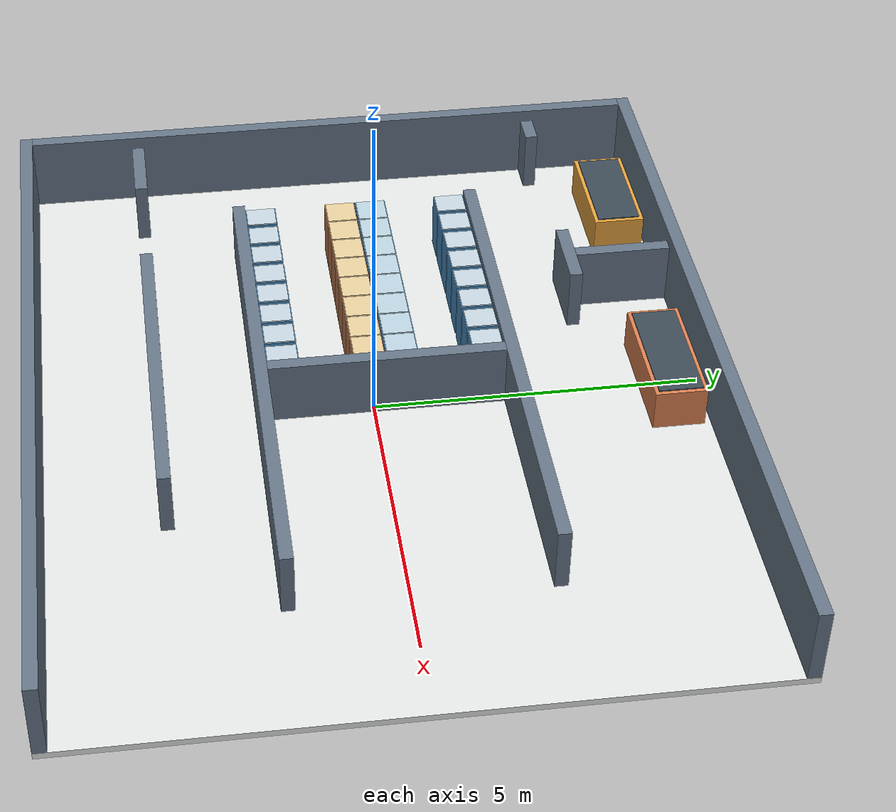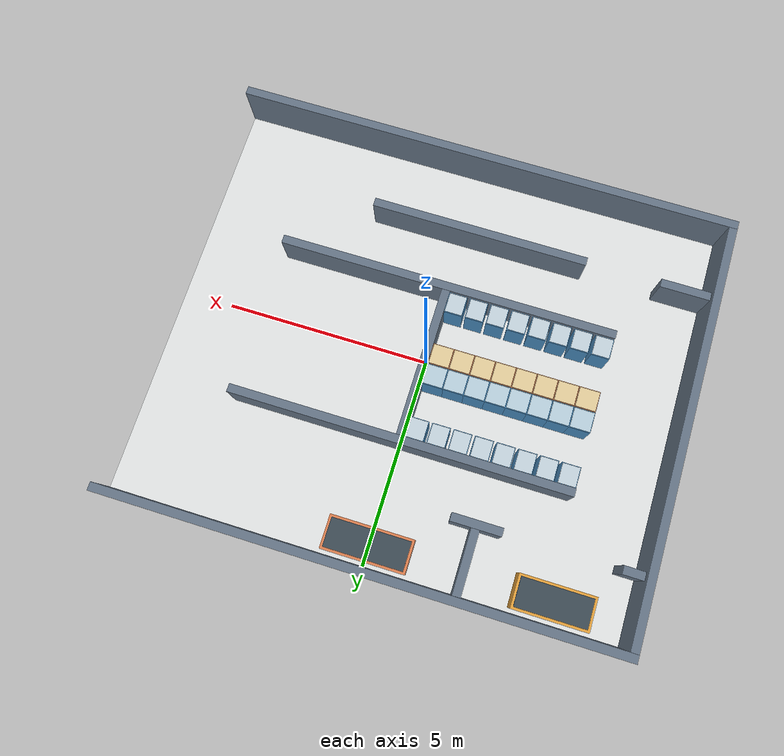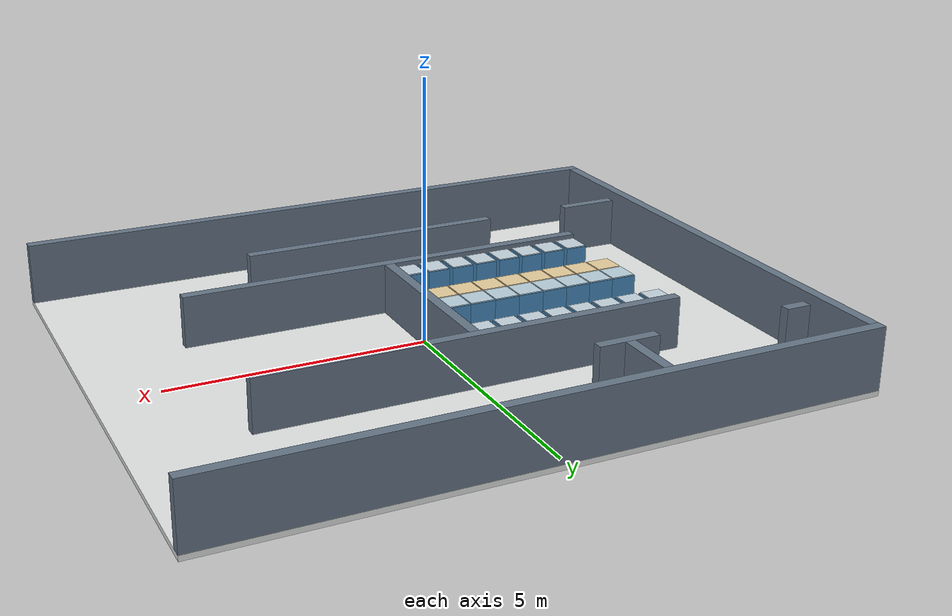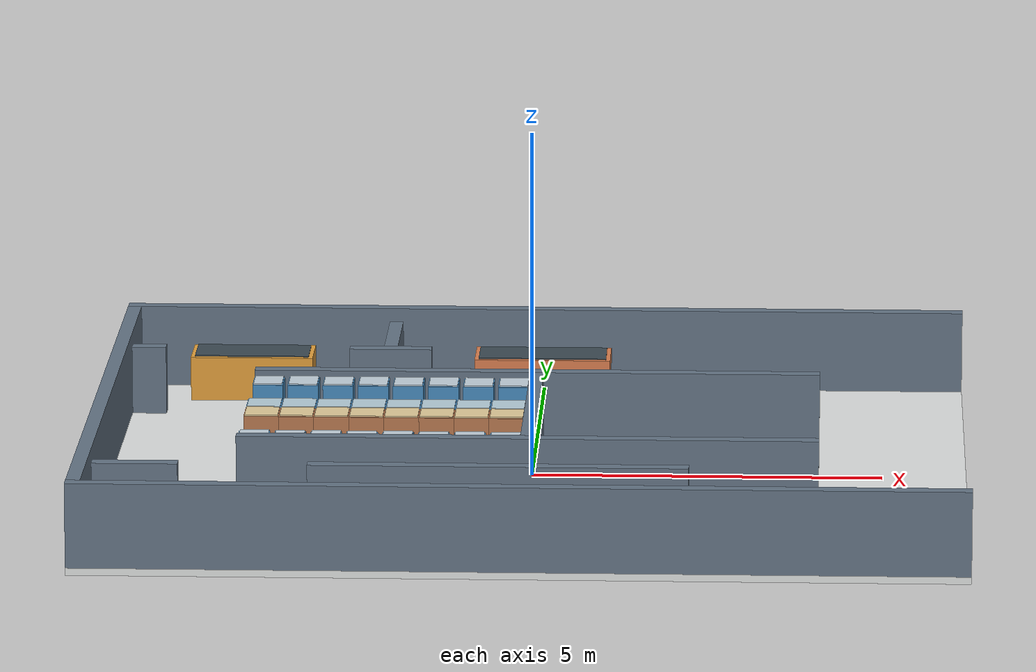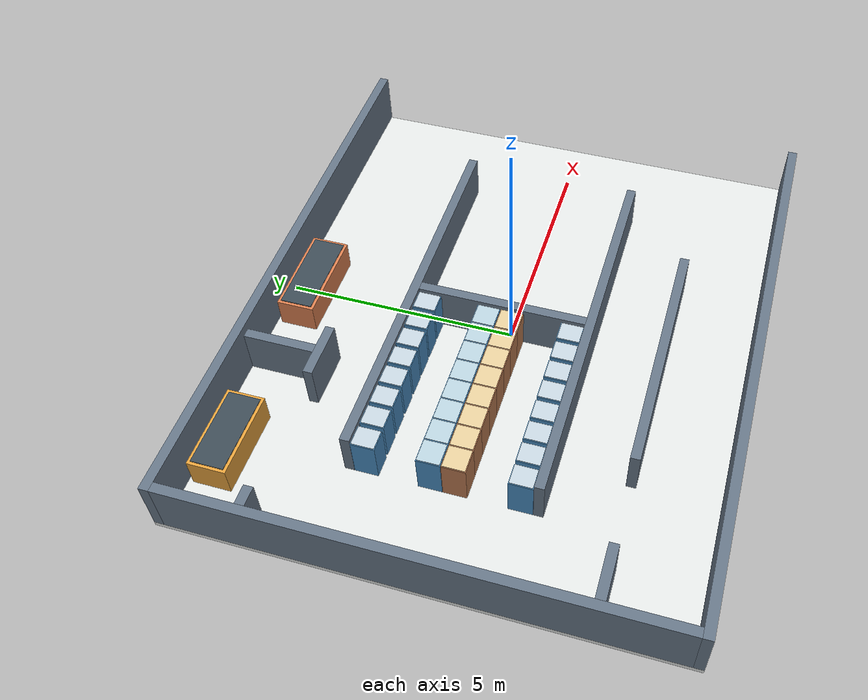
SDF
<sdf version="1.6">
 <world name="warehouse">
  <model name="floor">
   <static>true</static>
   <link name="floor_link">
    <collision name="floor_collision">
     <pose>0 0 -.05 0 0 0</pose>
     <geometry><box><size>12.4 10.4 0.1</size></box></geometry>
    </collision>
    <visual name="floor_visual">
     <pose>0 0 -0.05 0 0 0</pose>
     <geometry><box><size>12.4 10.4 0.1</size></box></geometry>
     <material>
      <ambient>0.8901960784313725 0.9019607843137255 0.8980392156862745 1</ambient>
      <diffuse>0.8901960784313725 0.9019607843137255 0.8980392156862745 1</diffuse>
     </material>
     <cast_shadows>false</cast_shadows>
    </visual>
   </link>
  </model>
  <model name="wall_north">
   <static>true</static>
   <pose>0 5.1 0 0 0 0</pose>
   <link name="body">
    <collision name="collision">
     <pose>0 0 0.6 0 0 0</pose>
     <geometry><box><size>12.4 0.2 1.2</size></box></geometry>
    </collision>
    <visual name="visual">
     <pose>0 0 0.6 0 0 0</pose>
     <geometry><box><size>12.4 0.2 1.2</size></box></geometry>
     <material>
      <ambient>0.4 0.4627450980392157 0.5294117647058824 1</ambient>
      <diffuse>0.4 0.4627450980392157 0.5294117647058824 1</diffuse>
     </material>
     <cast_shadows>false</cast_shadows>
    </visual>
   </link>
  </model>
  <model name="wall_south">
   <static>true</static>
   <pose>0 -5.1 0 0 0 0</pose>
   <link name="body">
    <collision name="collision">
     <pose>0 0 0.6 0 0 0</pose>
     <geometry><box><size>12.4 0.2 1.2</size></box></geometry>
    </collision>
    <visual name="visual">
     <pose>0 0 0.6 0 0 0</pose>
     <geometry><box><size>12.4 0.2 1.2</size></box></geometry>
     <material>
      <ambient>0.4 0.4627450980392157 0.5294117647058824 1</ambient>
      <diffuse>0.4 0.4627450980392157 0.5294117647058824 1</diffuse>
     </material>
     <cast_shadows>false</cast_shadows>
    </visual>
   </link>
  </model>
  <model name="wall_west">
   <static>true</static>
   <pose>-6.1 0 0 0 0 0</pose>
   <link name="body">
    <collision name="collision">
     <pose>0 0 0.6 0 0 0</pose>
     <geometry><box><size>0.2 10 1.2</size></box></geometry>
    </collision>
    <visual name="visual">
     <pose>0 0 0.6 0 0 0</pose>
     <geometry><box><size>0.2 10 1.2</size></box></geometry>
     <material>
      <ambient>0.4 0.4627450980392157 0.5294117647058824 1</ambient>
      <diffuse>0.4 0.4627450980392157 0.5294117647058824 1</diffuse>
     </material>
     <cast_shadows>false</cast_shadows>
    </visual>
   </link>
  </model>
  <model name="partition_west">
   <static>true</static>
   <pose>-5.4 -3.25 0 0 0 0</pose>
   <link name="body">
    <collision name="collision">
     <pose>0 0 0.5 0 0 0</pose>
     <geometry><box><size>1.2 0.2 1.0</size></box></geometry>
    </collision>
    <visual name="visual">
     <pose>0 0 0.5 0 0 0</pose>
     <geometry><box><size>1.2 0.2 1.0</size></box></geometry>
     <material>
      <ambient>0.4 0.4627450980392157 0.5294117647058824 1</ambient>
      <diffuse>0.4 0.4627450980392157 0.5294117647058824 1</diffuse>
     </material>
     <cast_shadows>false</cast_shadows>
    </visual>
   </link>
  </model>
  <model name="partition_middle">
   <static>true</static>
   <pose>-0.35 -3.25 0 0 0 0</pose>
   <link name="body">
    <collision name="collision">
     <pose>0 0 0.5 0 0 0</pose>
     <geometry><box><size>5.3 0.2 1.0</size></box></geometry>
    </collision>
    <visual name="visual">
     <pose>0 0 0.5 0 0 0</pose>
     <geometry><box><size>5.3 0.2 1.0</size></box></geometry>
     <material>
      <ambient>0.4 0.4627450980392157 0.5294117647058824 1</ambient>
      <diffuse>0.4 0.4627450980392157 0.5294117647058824 1</diffuse>
     </material>
     <cast_shadows>false</cast_shadows>
    </visual>
   </link>
  </model>
  <model name="storage_north">
   <static>true</static>
   <pose>0 2.1 0 0 0 0</pose>
   <link name="body">
    <collision name="collision">
     <pose>0 0 0.5 0 0 0</pose>
     <geometry><box><size>8.2 0.2 1.0</size></box></geometry>
    </collision>
    <visual name="visual">
     <pose>0 0 0.5 0 0 0</pose>
     <geometry><box><size>8.2 0.2 1.0</size></box></geometry>
     <material>
      <ambient>0.4 0.4627450980392157 0.5294117647058824 1</ambient>
      <diffuse>0.4 0.4627450980392157 0.5294117647058824 1</diffuse>
     </material>
     <cast_shadows>false</cast_shadows>
    </visual>
   </link>
  </model>
  <model name="storage_south">
   <static>true</static>
   <pose>0 -1.7 0 0 0 0</pose>
   <link name="body">
    <collision name="collision">
     <pose>0 0 0.5 0 0 0</pose>
     <geometry><box><size>8.2 0.2 1.0</size></box></geometry>
    </collision>
    <visual name="visual">
     <pose>0 0 0.5 0 0 0</pose>
     <geometry><box><size>8.2 0.2 1.0</size></box></geometry>
     <material>
      <ambient>0.4 0.4627450980392157 0.5294117647058824 1</ambient>
      <diffuse>0.4 0.4627450980392157 0.5294117647058824 1</diffuse>
     </material>
     <cast_shadows>false</cast_shadows>
    </visual>
   </link>
  </model>
  <model name="storage_divider">
   <static>true</static>
   <pose>0 0.2 0 0 0 0</pose>
   <link name="body">
    <collision name="collision">
     <pose>0 0 0.5 0 0 0</pose>
     <geometry><box><size>0.2 3.6 1.0</size></box></geometry>
    </collision>
    <visual name="visual">
     <pose>0 0 0.5 0 0 0</pose>
     <geometry><box><size>0.2 3.6 1.0</size></box></geometry>
     <material>
      <ambient>0.4 0.4627450980392157 0.5294117647058824 1</ambient>
      <diffuse>0.4 0.4627450980392157 0.5294117647058824 1</diffuse>
     </material>
     <cast_shadows>false</cast_shadows>
    </visual>
   </link>
  </model>
  <model name="work_divider_w">
   <static>true</static>
   <pose>-2.2 4.25 0 0 0 0</pose>
   <link name="body">
    <collision name="collision">
     <pose>0 0 0.5 0 0 0</pose>
     <geometry><box><size>0.2 1.5 1.0</size></box></geometry>
    </collision>
    <visual name="visual">
     <pose>0 0 0.5 0 0 0</pose>
     <geometry><box><size>0.2 1.5 1.0</size></box></geometry>
     <material>
      <ambient>0.4 0.4627450980392157 0.5294117647058824 1</ambient>
      <diffuse>0.4 0.4627450980392157 0.5294117647058824 1</diffuse>
     </material>
     <cast_shadows>false</cast_shadows>
    </visual>
   </link>
  </model>
  <model name="work_wing_w">
   <static>true</static>
   <pose>-2.2 3.4 0 0 0 0</pose>
   <link name="body">
    <collision name="collision">
     <pose>0 0 0.5 0 0 0</pose>
     <geometry><box><size>1.2 0.2 1.0</size></box></geometry>
    </collision>
    <visual name="visual">
     <pose>0 0 0.5 0 0 0</pose>
     <geometry><box><size>1.2 0.2 1.0</size></box></geometry>
     <material>
      <ambient>0.4 0.4627450980392157 0.5294117647058824 1</ambient>
      <diffuse>0.4 0.4627450980392157 0.5294117647058824 1</diffuse>
     </material>
     <cast_shadows>false</cast_shadows>
    </visual>
   </link>
  </model>
  <model name="work_stub_w">
   <static>true</static>
   <pose>-5.75 3.4 0 0 0 0</pose>
   <link name="body">
    <collision name="collision">
     <pose>0 0 0.5 0 0 0</pose>
     <geometry><box><size>0.5 0.2 1.0</size></box></geometry>
    </collision>
    <visual name="visual">
     <pose>0 0 0.5 0 0 0</pose>
     <geometry><box><size>0.5 0.2 1.0</size></box></geometry>
     <material>
      <ambient>0.4 0.4627450980392157 0.5294117647058824 1</ambient>
      <diffuse>0.4 0.4627450980392157 0.5294117647058824 1</diffuse>
     </material>
     <cast_shadows>false</cast_shadows>
    </visual>
   </link>
  </model>
  <model name="receiving">
   <static>true</static>
   <pose>-4.3 4.5 0 0 0 0</pose>
   <link name="body">
    <collision name="collision">
     <pose>0 0 0.325 0 0 0</pose>
     <geometry><box><size>1.8 0.8 0.65</size></box></geometry>
    </collision>
    <visual name="visual">
     <pose>0 0 0.325 0 0 0</pose>
     <geometry><box><size>1.8 0.8 0.65</size></box></geometry>
     <material>
      <ambient>0.9019607843137255 0.6352941176470588 0.23529411764705882 1</ambient>
      <diffuse>0.9019607843137255 0.6352941176470588 0.23529411764705882 1</diffuse>
     </material>
     <cast_shadows>false</cast_shadows>
    </visual>
    <visual name="work_surface">
     <pose>0 0 0.66 0 0 0</pose>
     <geometry><box><size>1.6800000000000002 0.68 0.02</size></box></geometry>
     <material>
      <ambient>0.23921568627450981 0.29411764705882354 0.3333333333333333 1</ambient>
      <diffuse>0.23921568627450981 0.29411764705882354 0.3333333333333333 1</diffuse>
     </material>
     <cast_shadows>false</cast_shadows>
    </visual>
   </link>
  </model>
  <model name="conveyor">
   <static>true</static>
   <pose>0 4.5 0 0 0 0</pose>
   <link name="body">
    <collision name="collision">
     <pose>0 0 0.325 0 0 0</pose>
     <geometry><box><size>2.0 0.8 0.65</size></box></geometry>
    </collision>
    <visual name="visual">
     <pose>0 0 0.325 0 0 0</pose>
     <geometry><box><size>2.0 0.8 0.65</size></box></geometry>
     <material>
      <ambient>0.8627450980392157 0.5019607843137255 0.3137254901960784 1</ambient>
      <diffuse>0.8627450980392157 0.5019607843137255 0.3137254901960784 1</diffuse>
     </material>
     <cast_shadows>false</cast_shadows>
    </visual>
    <visual name="work_surface">
     <pose>0 0 0.66 0 0 0</pose>
     <geometry><box><size>1.88 0.68 0.02</size></box></geometry>
     <material>
      <ambient>0.23921568627450981 0.29411764705882354 0.3333333333333333 1</ambient>
      <diffuse>0.23921568627450981 0.29411764705882354 0.3333333333333333 1</diffuse>
     </material>
     <cast_shadows>false</cast_shadows>
    </visual>
   </link>
  </model>
  <model name="rack_A1_1">
   <static>true</static>
   <pose>-3.8799999999999994 -1.35 0 0 0 0</pose>
   <link name="body">
    <collision name="collision">
     <pose>0 0 0.45 0 0 0</pose>
     <geometry><box><size>0.44 0.5 0.9</size></box></geometry>
    </collision>
    <visual name="bay_single">
     <pose>0 0 0.45 0 0 0</pose>
     <geometry><box><size>0.44 0.49 0.9</size></box></geometry>
     <material>
      <ambient>0.2823529411764706 0.5490196078431373 0.7529411764705882 1</ambient>
      <diffuse>0.2823529411764706 0.5490196078431373 0.7529411764705882 1</diffuse>
     </material>
     <cast_shadows>false</cast_shadows>
    </visual>
    <visual name="cap_single">
     <pose>0 0 0.91 0 0 0</pose>
     <geometry><box><size>0.41000000000000003 0.46 0.02</size></box></geometry>
     <material>
      <ambient>0.7764705882352941 0.8352941176470589 0.8745098039215686 1</ambient>
      <diffuse>0.7764705882352941 0.8352941176470589 0.8745098039215686 1</diffuse>
     </material>
     <cast_shadows>false</cast_shadows>
    </visual>
   </link>
  </model>
  <model name="rack_A1_2">
   <static>true</static>
   <pose>-3.371428571428571 -1.35 0 0 0 0</pose>
   <link name="body">
    <collision name="collision">
     <pose>0 0 0.45 0 0 0</pose>
     <geometry><box><size>0.44 0.5 0.9</size></box></geometry>
    </collision>
    <visual name="bay_single">
     <pose>0 0 0.45 0 0 0</pose>
     <geometry><box><size>0.44 0.49 0.9</size></box></geometry>
     <material>
      <ambient>0.2823529411764706 0.5490196078431373 0.7529411764705882 1</ambient>
      <diffuse>0.2823529411764706 0.5490196078431373 0.7529411764705882 1</diffuse>
     </material>
     <cast_shadows>false</cast_shadows>
    </visual>
    <visual name="cap_single">
     <pose>0 0 0.91 0 0 0</pose>
     <geometry><box><size>0.41000000000000003 0.46 0.02</size></box></geometry>
     <material>
      <ambient>0.7764705882352941 0.8352941176470589 0.8745098039215686 1</ambient>
      <diffuse>0.7764705882352941 0.8352941176470589 0.8745098039215686 1</diffuse>
     </material>
     <cast_shadows>false</cast_shadows>
    </visual>
   </link>
  </model>
  <model name="rack_A1_3">
   <static>true</static>
   <pose>-2.862857142857142 -1.35 0 0 0 0</pose>
   <link name="body">
    <collision name="collision">
     <pose>0 0 0.45 0 0 0</pose>
     <geometry><box><size>0.44 0.5 0.9</size></box></geometry>
    </collision>
    <visual name="bay_single">
     <pose>0 0 0.45 0 0 0</pose>
     <geometry><box><size>0.44 0.49 0.9</size></box></geometry>
     <material>
      <ambient>0.2823529411764706 0.5490196078431373 0.7529411764705882 1</ambient>
      <diffuse>0.2823529411764706 0.5490196078431373 0.7529411764705882 1</diffuse>
     </material>
     <cast_shadows>false</cast_shadows>
    </visual>
    <visual name="cap_single">
     <pose>0 0 0.91 0 0 0</pose>
     <geometry><box><size>0.41000000000000003 0.46 0.02</size></box></geometry>
     <material>
      <ambient>0.7764705882352941 0.8352941176470589 0.8745098039215686 1</ambient>
      <diffuse>0.7764705882352941 0.8352941176470589 0.8745098039215686 1</diffuse>
     </material>
     <cast_shadows>false</cast_shadows>
    </visual>
   </link>
  </model>
  <model name="rack_A1_4">
   <static>true</static>
   <pose>-2.3542857142857136 -1.35 0 0 0 0</pose>
   <link name="body">
    <collision name="collision">
     <pose>0 0 0.45 0 0 0</pose>
     <geometry><box><size>0.44 0.5 0.9</size></box></geometry>
    </collision>
    <visual name="bay_single">
     <pose>0 0 0.45 0 0 0</pose>
     <geometry><box><size>0.44 0.49 0.9</size></box></geometry>
     <material>
      <ambient>0.2823529411764706 0.5490196078431373 0.7529411764705882 1</ambient>
      <diffuse>0.2823529411764706 0.5490196078431373 0.7529411764705882 1</diffuse>
     </material>
     <cast_shadows>false</cast_shadows>
    </visual>
    <visual name="cap_single">
     <pose>0 0 0.91 0 0 0</pose>
     <geometry><box><size>0.41000000000000003 0.46 0.02</size></box></geometry>
     <material>
      <ambient>0.7764705882352941 0.8352941176470589 0.8745098039215686 1</ambient>
      <diffuse>0.7764705882352941 0.8352941176470589 0.8745098039215686 1</diffuse>
     </material>
     <cast_shadows>false</cast_shadows>
    </visual>
   </link>
  </model>
  <model name="rack_A1_5">
   <static>true</static>
   <pose>-1.8457142857142852 -1.35 0 0 0 0</pose>
   <link name="body">
    <collision name="collision">
     <pose>0 0 0.45 0 0 0</pose>
     <geometry><box><size>0.44 0.5 0.9</size></box></geometry>
    </collision>
    <visual name="bay_single">
     <pose>0 0 0.45 0 0 0</pose>
     <geometry><box><size>0.44 0.49 0.9</size></box></geometry>
     <material>
      <ambient>0.2823529411764706 0.5490196078431373 0.7529411764705882 1</ambient>
      <diffuse>0.2823529411764706 0.5490196078431373 0.7529411764705882 1</diffuse>
     </material>
     <cast_shadows>false</cast_shadows>
    </visual>
    <visual name="cap_single">
     <pose>0 0 0.91 0 0 0</pose>
     <geometry><box><size>0.41000000000000003 0.46 0.02</size></box></geometry>
     <material>
      <ambient>0.7764705882352941 0.8352941176470589 0.8745098039215686 1</ambient>
      <diffuse>0.7764705882352941 0.8352941176470589 0.8745098039215686 1</diffuse>
     </material>
     <cast_shadows>false</cast_shadows>
    </visual>
   </link>
  </model>
  <model name="rack_A1_6">
   <static>true</static>
   <pose>-1.3371428571428567 -1.35 0 0 0 0</pose>
   <link name="body">
    <collision name="collision">
     <pose>0 0 0.45 0 0 0</pose>
     <geometry><box><size>0.44 0.5 0.9</size></box></geometry>
    </collision>
    <visual name="bay_single">
     <pose>0 0 0.45 0 0 0</pose>
     <geometry><box><size>0.44 0.49 0.9</size></box></geometry>
     <material>
      <ambient>0.2823529411764706 0.5490196078431373 0.7529411764705882 1</ambient>
      <diffuse>0.2823529411764706 0.5490196078431373 0.7529411764705882 1</diffuse>
     </material>
     <cast_shadows>false</cast_shadows>
    </visual>
    <visual name="cap_single">
     <pose>0 0 0.91 0 0 0</pose>
     <geometry><box><size>0.41000000000000003 0.46 0.02</size></box></geometry>
     <material>
      <ambient>0.7764705882352941 0.8352941176470589 0.8745098039215686 1</ambient>
      <diffuse>0.7764705882352941 0.8352941176470589 0.8745098039215686 1</diffuse>
     </material>
     <cast_shadows>false</cast_shadows>
    </visual>
   </link>
  </model>
  <model name="rack_A1_7">
   <static>true</static>
   <pose>-0.8285714285714278 -1.35 0 0 0 0</pose>
   <link name="body">
    <collision name="collision">
     <pose>0 0 0.45 0 0 0</pose>
     <geometry><box><size>0.44 0.5 0.9</size></box></geometry>
    </collision>
    <visual name="bay_single">
     <pose>0 0 0.45 0 0 0</pose>
     <geometry><box><size>0.44 0.49 0.9</size></box></geometry>
     <material>
      <ambient>0.2823529411764706 0.5490196078431373 0.7529411764705882 1</ambient>
      <diffuse>0.2823529411764706 0.5490196078431373 0.7529411764705882 1</diffuse>
     </material>
     <cast_shadows>false</cast_shadows>
    </visual>
    <visual name="cap_single">
     <pose>0 0 0.91 0 0 0</pose>
     <geometry><box><size>0.41000000000000003 0.46 0.02</size></box></geometry>
     <material>
      <ambient>0.7764705882352941 0.8352941176470589 0.8745098039215686 1</ambient>
      <diffuse>0.7764705882352941 0.8352941176470589 0.8745098039215686 1</diffuse>
     </material>
     <cast_shadows>false</cast_shadows>
    </visual>
   </link>
  </model>
  <model name="rack_A1_8">
   <static>true</static>
   <pose>-0.3199999999999994 -1.35 0 0 0 0</pose>
   <link name="body">
    <collision name="collision">
     <pose>0 0 0.45 0 0 0</pose>
     <geometry><box><size>0.44 0.5 0.9</size></box></geometry>
    </collision>
    <visual name="bay_single">
     <pose>0 0 0.45 0 0 0</pose>
     <geometry><box><size>0.44 0.49 0.9</size></box></geometry>
     <material>
      <ambient>0.2823529411764706 0.5490196078431373 0.7529411764705882 1</ambient>
      <diffuse>0.2823529411764706 0.5490196078431373 0.7529411764705882 1</diffuse>
     </material>
     <cast_shadows>false</cast_shadows>
    </visual>
    <visual name="cap_single">
     <pose>0 0 0.91 0 0 0</pose>
     <geometry><box><size>0.41000000000000003 0.46 0.02</size></box></geometry>
     <material>
      <ambient>0.7764705882352941 0.8352941176470589 0.8745098039215686 1</ambient>
      <diffuse>0.7764705882352941 0.8352941176470589 0.8745098039215686 1</diffuse>
     </material>
     <cast_shadows>false</cast_shadows>
    </visual>
   </link>
  </model>
  <model name="rack_A2_1">
   <static>true</static>
   <pose>-3.8499999999999996 0.2 0 0 0 0</pose>
   <link name="body">
    <collision name="collision">
     <pose>0 0 0.45 0 0 0</pose>
     <geometry><box><size>0.5 1.0 0.9</size></box></geometry>
    </collision>
    <visual name="bay_north">
     <pose>0 0.25 0.45 0 0 0</pose>
     <geometry><box><size>0.5 0.49 0.9</size></box></geometry>
     <material>
      <ambient>0.2823529411764706 0.5490196078431373 0.7529411764705882 1</ambient>
      <diffuse>0.2823529411764706 0.5490196078431373 0.7529411764705882 1</diffuse>
     </material>
     <cast_shadows>false</cast_shadows>
    </visual>
    <visual name="cap_north">
     <pose>0 0.25 0.91 0 0 0</pose>
     <geometry><box><size>0.47 0.46 0.02</size></box></geometry>
     <material>
      <ambient>0.7294117647058823 0.8235294117647058 0.8705882352941177 1</ambient>
      <diffuse>0.7294117647058823 0.8235294117647058 0.8705882352941177 1</diffuse>
     </material>
     <cast_shadows>false</cast_shadows>
    </visual>
    <visual name="bay_south">
     <pose>0 -0.25 0.45 0 0 0</pose>
     <geometry><box><size>0.5 0.49 0.9</size></box></geometry>
     <material>
      <ambient>0.7254901960784313 0.4745098039215686 0.3137254901960784 1</ambient>
      <diffuse>0.7254901960784313 0.4745098039215686 0.3137254901960784 1</diffuse>
     </material>
     <cast_shadows>false</cast_shadows>
    </visual>
    <visual name="cap_south">
     <pose>0 -0.25 0.91 0 0 0</pose>
     <geometry><box><size>0.47 0.46 0.02</size></box></geometry>
     <material>
      <ambient>0.9019607843137255 0.8117647058823529 0.615686274509804 1</ambient>
      <diffuse>0.9019607843137255 0.8117647058823529 0.615686274509804 1</diffuse>
     </material>
     <cast_shadows>false</cast_shadows>
    </visual>
   </link>
  </model>
  <model name="rack_A2_2">
   <static>true</static>
   <pose>-3.3499999999999996 0.2 0 0 0 0</pose>
   <link name="body">
    <collision name="collision">
     <pose>0 0 0.45 0 0 0</pose>
     <geometry><box><size>0.5 1.0 0.9</size></box></geometry>
    </collision>
    <visual name="bay_north">
     <pose>0 0.25 0.45 0 0 0</pose>
     <geometry><box><size>0.5 0.49 0.9</size></box></geometry>
     <material>
      <ambient>0.2823529411764706 0.5490196078431373 0.7529411764705882 1</ambient>
      <diffuse>0.2823529411764706 0.5490196078431373 0.7529411764705882 1</diffuse>
     </material>
     <cast_shadows>false</cast_shadows>
    </visual>
    <visual name="cap_north">
     <pose>0 0.25 0.91 0 0 0</pose>
     <geometry><box><size>0.47 0.46 0.02</size></box></geometry>
     <material>
      <ambient>0.7294117647058823 0.8235294117647058 0.8705882352941177 1</ambient>
      <diffuse>0.7294117647058823 0.8235294117647058 0.8705882352941177 1</diffuse>
     </material>
     <cast_shadows>false</cast_shadows>
    </visual>
    <visual name="bay_south">
     <pose>0 -0.25 0.45 0 0 0</pose>
     <geometry><box><size>0.5 0.49 0.9</size></box></geometry>
     <material>
      <ambient>0.7254901960784313 0.4745098039215686 0.3137254901960784 1</ambient>
      <diffuse>0.7254901960784313 0.4745098039215686 0.3137254901960784 1</diffuse>
     </material>
     <cast_shadows>false</cast_shadows>
    </visual>
    <visual name="cap_south">
     <pose>0 -0.25 0.91 0 0 0</pose>
     <geometry><box><size>0.47 0.46 0.02</size></box></geometry>
     <material>
      <ambient>0.9019607843137255 0.8117647058823529 0.615686274509804 1</ambient>
      <diffuse>0.9019607843137255 0.8117647058823529 0.615686274509804 1</diffuse>
     </material>
     <cast_shadows>false</cast_shadows>
    </visual>
   </link>
  </model>
  <model name="rack_A2_3">
   <static>true</static>
   <pose>-2.8499999999999996 0.2 0 0 0 0</pose>
   <link name="body">
    <collision name="collision">
     <pose>0 0 0.45 0 0 0</pose>
     <geometry><box><size>0.5 1.0 0.9</size></box></geometry>
    </collision>
    <visual name="bay_north">
     <pose>0 0.25 0.45 0 0 0</pose>
     <geometry><box><size>0.5 0.49 0.9</size></box></geometry>
     <material>
      <ambient>0.2823529411764706 0.5490196078431373 0.7529411764705882 1</ambient>
      <diffuse>0.2823529411764706 0.5490196078431373 0.7529411764705882 1</diffuse>
     </material>
     <cast_shadows>false</cast_shadows>
    </visual>
    <visual name="cap_north">
     <pose>0 0.25 0.91 0 0 0</pose>
     <geometry><box><size>0.47 0.46 0.02</size></box></geometry>
     <material>
      <ambient>0.7294117647058823 0.8235294117647058 0.8705882352941177 1</ambient>
      <diffuse>0.7294117647058823 0.8235294117647058 0.8705882352941177 1</diffuse>
     </material>
     <cast_shadows>false</cast_shadows>
    </visual>
    <visual name="bay_south">
     <pose>0 -0.25 0.45 0 0 0</pose>
     <geometry><box><size>0.5 0.49 0.9</size></box></geometry>
     <material>
      <ambient>0.7254901960784313 0.4745098039215686 0.3137254901960784 1</ambient>
      <diffuse>0.7254901960784313 0.4745098039215686 0.3137254901960784 1</diffuse>
     </material>
     <cast_shadows>false</cast_shadows>
    </visual>
    <visual name="cap_south">
     <pose>0 -0.25 0.91 0 0 0</pose>
     <geometry><box><size>0.47 0.46 0.02</size></box></geometry>
     <material>
      <ambient>0.9019607843137255 0.8117647058823529 0.615686274509804 1</ambient>
      <diffuse>0.9019607843137255 0.8117647058823529 0.615686274509804 1</diffuse>
     </material>
     <cast_shadows>false</cast_shadows>
    </visual>
   </link>
  </model>
  <model name="rack_A2_4">
   <static>true</static>
   <pose>-2.3499999999999996 0.2 0 0 0 0</pose>
   <link name="body">
    <collision name="collision">
     <pose>0 0 0.45 0 0 0</pose>
     <geometry><box><size>0.5 1.0 0.9</size></box></geometry>
    </collision>
    <visual name="bay_north">
     <pose>0 0.25 0.45 0 0 0</pose>
     <geometry><box><size>0.5 0.49 0.9</size></box></geometry>
     <material>
      <ambient>0.2823529411764706 0.5490196078431373 0.7529411764705882 1</ambient>
      <diffuse>0.2823529411764706 0.5490196078431373 0.7529411764705882 1</diffuse>
     </material>
     <cast_shadows>false</cast_shadows>
    </visual>
    <visual name="cap_north">
     <pose>0 0.25 0.91 0 0 0</pose>
     <geometry><box><size>0.47 0.46 0.02</size></box></geometry>
     <material>
      <ambient>0.7294117647058823 0.8235294117647058 0.8705882352941177 1</ambient>
      <diffuse>0.7294117647058823 0.8235294117647058 0.8705882352941177 1</diffuse>
     </material>
     <cast_shadows>false</cast_shadows>
    </visual>
    <visual name="bay_south">
     <pose>0 -0.25 0.45 0 0 0</pose>
     <geometry><box><size>0.5 0.49 0.9</size></box></geometry>
     <material>
      <ambient>0.7254901960784313 0.4745098039215686 0.3137254901960784 1</ambient>
      <diffuse>0.7254901960784313 0.4745098039215686 0.3137254901960784 1</diffuse>
     </material>
     <cast_shadows>false</cast_shadows>
    </visual>
    <visual name="cap_south">
     <pose>0 -0.25 0.91 0 0 0</pose>
     <geometry><box><size>0.47 0.46 0.02</size></box></geometry>
     <material>
      <ambient>0.9019607843137255 0.8117647058823529 0.615686274509804 1</ambient>
      <diffuse>0.9019607843137255 0.8117647058823529 0.615686274509804 1</diffuse>
     </material>
     <cast_shadows>false</cast_shadows>
    </visual>
   </link>
  </model>
  <model name="rack_A2_5">
   <static>true</static>
   <pose>-1.8499999999999996 0.2 0 0 0 0</pose>
   <link name="body">
    <collision name="collision">
     <pose>0 0 0.45 0 0 0</pose>
     <geometry><box><size>0.5 1.0 0.9</size></box></geometry>
    </collision>
    <visual name="bay_north">
     <pose>0 0.25 0.45 0 0 0</pose>
     <geometry><box><size>0.5 0.49 0.9</size></box></geometry>
     <material>
      <ambient>0.2823529411764706 0.5490196078431373 0.7529411764705882 1</ambient>
      <diffuse>0.2823529411764706 0.5490196078431373 0.7529411764705882 1</diffuse>
     </material>
     <cast_shadows>false</cast_shadows>
    </visual>
    <visual name="cap_north">
     <pose>0 0.25 0.91 0 0 0</pose>
     <geometry><box><size>0.47 0.46 0.02</size></box></geometry>
     <material>
      <ambient>0.7294117647058823 0.8235294117647058 0.8705882352941177 1</ambient>
      <diffuse>0.7294117647058823 0.8235294117647058 0.8705882352941177 1</diffuse>
     </material>
     <cast_shadows>false</cast_shadows>
    </visual>
    <visual name="bay_south">
     <pose>0 -0.25 0.45 0 0 0</pose>
     <geometry><box><size>0.5 0.49 0.9</size></box></geometry>
     <material>
      <ambient>0.7254901960784313 0.4745098039215686 0.3137254901960784 1</ambient>
      <diffuse>0.7254901960784313 0.4745098039215686 0.3137254901960784 1</diffuse>
     </material>
     <cast_shadows>false</cast_shadows>
    </visual>
    <visual name="cap_south">
     <pose>0 -0.25 0.91 0 0 0</pose>
     <geometry><box><size>0.47 0.46 0.02</size></box></geometry>
     <material>
      <ambient>0.9019607843137255 0.8117647058823529 0.615686274509804 1</ambient>
      <diffuse>0.9019607843137255 0.8117647058823529 0.615686274509804 1</diffuse>
     </material>
     <cast_shadows>false</cast_shadows>
    </visual>
   </link>
  </model>
  <model name="rack_A2_6">
   <static>true</static>
   <pose>-1.3499999999999996 0.2 0 0 0 0</pose>
   <link name="body">
    <collision name="collision">
     <pose>0 0 0.45 0 0 0</pose>
     <geometry><box><size>0.5 1.0 0.9</size></box></geometry>
    </collision>
    <visual name="bay_north">
     <pose>0 0.25 0.45 0 0 0</pose>
     <geometry><box><size>0.5 0.49 0.9</size></box></geometry>
     <material>
      <ambient>0.2823529411764706 0.5490196078431373 0.7529411764705882 1</ambient>
      <diffuse>0.2823529411764706 0.5490196078431373 0.7529411764705882 1</diffuse>
     </material>
     <cast_shadows>false</cast_shadows>
    </visual>
    <visual name="cap_north">
     <pose>0 0.25 0.91 0 0 0</pose>
     <geometry><box><size>0.47 0.46 0.02</size></box></geometry>
     <material>
      <ambient>0.7294117647058823 0.8235294117647058 0.8705882352941177 1</ambient>
      <diffuse>0.7294117647058823 0.8235294117647058 0.8705882352941177 1</diffuse>
     </material>
     <cast_shadows>false</cast_shadows>
    </visual>
    <visual name="bay_south">
     <pose>0 -0.25 0.45 0 0 0</pose>
     <geometry><box><size>0.5 0.49 0.9</size></box></geometry>
     <material>
      <ambient>0.7254901960784313 0.4745098039215686 0.3137254901960784 1</ambient>
      <diffuse>0.7254901960784313 0.4745098039215686 0.3137254901960784 1</diffuse>
     </material>
     <cast_shadows>false</cast_shadows>
    </visual>
    <visual name="cap_south">
     <pose>0 -0.25 0.91 0 0 0</pose>
     <geometry><box><size>0.47 0.46 0.02</size></box></geometry>
     <material>
      <ambient>0.9019607843137255 0.8117647058823529 0.615686274509804 1</ambient>
      <diffuse>0.9019607843137255 0.8117647058823529 0.615686274509804 1</diffuse>
     </material>
     <cast_shadows>false</cast_shadows>
    </visual>
   </link>
  </model>
  <model name="rack_A2_7">
   <static>true</static>
   <pose>-0.8499999999999996 0.2 0 0 0 0</pose>
   <link name="body">
    <collision name="collision">
     <pose>0 0 0.45 0 0 0</pose>
     <geometry><box><size>0.5 1.0 0.9</size></box></geometry>
    </collision>
    <visual name="bay_north">
     <pose>0 0.25 0.45 0 0 0</pose>
     <geometry><box><size>0.5 0.49 0.9</size></box></geometry>
     <material>
      <ambient>0.2823529411764706 0.5490196078431373 0.7529411764705882 1</ambient>
      <diffuse>0.2823529411764706 0.5490196078431373 0.7529411764705882 1</diffuse>
     </material>
     <cast_shadows>false</cast_shadows>
    </visual>
    <visual name="cap_north">
     <pose>0 0.25 0.91 0 0 0</pose>
     <geometry><box><size>0.47 0.46 0.02</size></box></geometry>
     <material>
      <ambient>0.7294117647058823 0.8235294117647058 0.8705882352941177 1</ambient>
      <diffuse>0.7294117647058823 0.8235294117647058 0.8705882352941177 1</diffuse>
     </material>
     <cast_shadows>false</cast_shadows>
    </visual>
    <visual name="bay_south">
     <pose>0 -0.25 0.45 0 0 0</pose>
     <geometry><box><size>0.5 0.49 0.9</size></box></geometry>
     <material>
      <ambient>0.7254901960784313 0.4745098039215686 0.3137254901960784 1</ambient>
      <diffuse>0.7254901960784313 0.4745098039215686 0.3137254901960784 1</diffuse>
     </material>
     <cast_shadows>false</cast_shadows>
    </visual>
    <visual name="cap_south">
     <pose>0 -0.25 0.91 0 0 0</pose>
     <geometry><box><size>0.47 0.46 0.02</size></box></geometry>
     <material>
      <ambient>0.9019607843137255 0.8117647058823529 0.615686274509804 1</ambient>
      <diffuse>0.9019607843137255 0.8117647058823529 0.615686274509804 1</diffuse>
     </material>
     <cast_shadows>false</cast_shadows>
    </visual>
   </link>
  </model>
  <model name="rack_A2_8">
   <static>true</static>
   <pose>-0.34999999999999964 0.2 0 0 0 0</pose>
   <link name="body">
    <collision name="collision">
     <pose>0 0 0.45 0 0 0</pose>
     <geometry><box><size>0.5 1.0 0.9</size></box></geometry>
    </collision>
    <visual name="bay_north">
     <pose>0 0.25 0.45 0 0 0</pose>
     <geometry><box><size>0.5 0.49 0.9</size></box></geometry>
     <material>
      <ambient>0.2823529411764706 0.5490196078431373 0.7529411764705882 1</ambient>
      <diffuse>0.2823529411764706 0.5490196078431373 0.7529411764705882 1</diffuse>
     </material>
     <cast_shadows>false</cast_shadows>
    </visual>
    <visual name="cap_north">
     <pose>0 0.25 0.91 0 0 0</pose>
     <geometry><box><size>0.47 0.46 0.02</size></box></geometry>
     <material>
      <ambient>0.7294117647058823 0.8235294117647058 0.8705882352941177 1</ambient>
      <diffuse>0.7294117647058823 0.8235294117647058 0.8705882352941177 1</diffuse>
     </material>
     <cast_shadows>false</cast_shadows>
    </visual>
    <visual name="bay_south">
     <pose>0 -0.25 0.45 0 0 0</pose>
     <geometry><box><size>0.5 0.49 0.9</size></box></geometry>
     <material>
      <ambient>0.7254901960784313 0.4745098039215686 0.3137254901960784 1</ambient>
      <diffuse>0.7254901960784313 0.4745098039215686 0.3137254901960784 1</diffuse>
     </material>
     <cast_shadows>false</cast_shadows>
    </visual>
    <visual name="cap_south">
     <pose>0 -0.25 0.91 0 0 0</pose>
     <geometry><box><size>0.47 0.46 0.02</size></box></geometry>
     <material>
      <ambient>0.9019607843137255 0.8117647058823529 0.615686274509804 1</ambient>
      <diffuse>0.9019607843137255 0.8117647058823529 0.615686274509804 1</diffuse>
     </material>
     <cast_shadows>false</cast_shadows>
    </visual>
   </link>
  </model>
  <model name="rack_A3_1">
   <static>true</static>
   <pose>-3.8799999999999994 1.75 0 0 0 0</pose>
   <link name="body">
    <collision name="collision">
     <pose>0 0 0.45 0 0 0</pose>
     <geometry><box><size>0.44 0.5 0.9</size></box></geometry>
    </collision>
    <visual name="bay_single">
     <pose>0 0 0.45 0 0 0</pose>
     <geometry><box><size>0.44 0.49 0.9</size></box></geometry>
     <material>
      <ambient>0.2823529411764706 0.5490196078431373 0.7529411764705882 1</ambient>
      <diffuse>0.2823529411764706 0.5490196078431373 0.7529411764705882 1</diffuse>
     </material>
     <cast_shadows>false</cast_shadows>
    </visual>
    <visual name="cap_single">
     <pose>0 0 0.91 0 0 0</pose>
     <geometry><box><size>0.41000000000000003 0.46 0.02</size></box></geometry>
     <material>
      <ambient>0.7764705882352941 0.8352941176470589 0.8745098039215686 1</ambient>
      <diffuse>0.7764705882352941 0.8352941176470589 0.8745098039215686 1</diffuse>
     </material>
     <cast_shadows>false</cast_shadows>
    </visual>
   </link>
  </model>
  <model name="rack_A3_2">
   <static>true</static>
   <pose>-3.371428571428571 1.75 0 0 0 0</pose>
   <link name="body">
    <collision name="collision">
     <pose>0 0 0.45 0 0 0</pose>
     <geometry><box><size>0.44 0.5 0.9</size></box></geometry>
    </collision>
    <visual name="bay_single">
     <pose>0 0 0.45 0 0 0</pose>
     <geometry><box><size>0.44 0.49 0.9</size></box></geometry>
     <material>
      <ambient>0.2823529411764706 0.5490196078431373 0.7529411764705882 1</ambient>
      <diffuse>0.2823529411764706 0.5490196078431373 0.7529411764705882 1</diffuse>
     </material>
     <cast_shadows>false</cast_shadows>
    </visual>
    <visual name="cap_single">
     <pose>0 0 0.91 0 0 0</pose>
     <geometry><box><size>0.41000000000000003 0.46 0.02</size></box></geometry>
     <material>
      <ambient>0.7764705882352941 0.8352941176470589 0.8745098039215686 1</ambient>
      <diffuse>0.7764705882352941 0.8352941176470589 0.8745098039215686 1</diffuse>
     </material>
     <cast_shadows>false</cast_shadows>
    </visual>
   </link>
  </model>
  <model name="rack_A3_3">
   <static>true</static>
   <pose>-2.862857142857142 1.75 0 0 0 0</pose>
   <link name="body">
    <collision name="collision">
     <pose>0 0 0.45 0 0 0</pose>
     <geometry><box><size>0.44 0.5 0.9</size></box></geometry>
    </collision>
    <visual name="bay_single">
     <pose>0 0 0.45 0 0 0</pose>
     <geometry><box><size>0.44 0.49 0.9</size></box></geometry>
     <material>
      <ambient>0.2823529411764706 0.5490196078431373 0.7529411764705882 1</ambient>
      <diffuse>0.2823529411764706 0.5490196078431373 0.7529411764705882 1</diffuse>
     </material>
     <cast_shadows>false</cast_shadows>
    </visual>
    <visual name="cap_single">
     <pose>0 0 0.91 0 0 0</pose>
     <geometry><box><size>0.41000000000000003 0.46 0.02</size></box></geometry>
     <material>
      <ambient>0.7764705882352941 0.8352941176470589 0.8745098039215686 1</ambient>
      <diffuse>0.7764705882352941 0.8352941176470589 0.8745098039215686 1</diffuse>
     </material>
     <cast_shadows>false</cast_shadows>
    </visual>
   </link>
  </model>
  <model name="rack_A3_4">
   <static>true</static>
   <pose>-2.3542857142857136 1.75 0 0 0 0</pose>
   <link name="body">
    <collision name="collision">
     <pose>0 0 0.45 0 0 0</pose>
     <geometry><box><size>0.44 0.5 0.9</size></box></geometry>
    </collision>
    <visual name="bay_single">
     <pose>0 0 0.45 0 0 0</pose>
     <geometry><box><size>0.44 0.49 0.9</size></box></geometry>
     <material>
      <ambient>0.2823529411764706 0.5490196078431373 0.7529411764705882 1</ambient>
      <diffuse>0.2823529411764706 0.5490196078431373 0.7529411764705882 1</diffuse>
     </material>
     <cast_shadows>false</cast_shadows>
    </visual>
    <visual name="cap_single">
     <pose>0 0 0.91 0 0 0</pose>
     <geometry><box><size>0.41000000000000003 0.46 0.02</size></box></geometry>
     <material>
      <ambient>0.7764705882352941 0.8352941176470589 0.8745098039215686 1</ambient>
      <diffuse>0.7764705882352941 0.8352941176470589 0.8745098039215686 1</diffuse>
     </material>
     <cast_shadows>false</cast_shadows>
    </visual>
   </link>
  </model>
  <model name="rack_A3_5">
   <static>true</static>
   <pose>-1.8457142857142852 1.75 0 0 0 0</pose>
   <link name="body">
    <collision name="collision">
     <pose>0 0 0.45 0 0 0</pose>
     <geometry><box><size>0.44 0.5 0.9</size></box></geometry>
    </collision>
    <visual name="bay_single">
     <pose>0 0 0.45 0 0 0</pose>
     <geometry><box><size>0.44 0.49 0.9</size></box></geometry>
     <material>
      <ambient>0.2823529411764706 0.5490196078431373 0.7529411764705882 1</ambient>
      <diffuse>0.2823529411764706 0.5490196078431373 0.7529411764705882 1</diffuse>
     </material>
     <cast_shadows>false</cast_shadows>
    </visual>
    <visual name="cap_single">
     <pose>0 0 0.91 0 0 0</pose>
     <geometry><box><size>0.41000000000000003 0.46 0.02</size></box></geometry>
     <material>
      <ambient>0.7764705882352941 0.8352941176470589 0.8745098039215686 1</ambient>
      <diffuse>0.7764705882352941 0.8352941176470589 0.8745098039215686 1</diffuse>
     </material>
     <cast_shadows>false</cast_shadows>
    </visual>
   </link>
  </model>
  <model name="rack_A3_6">
   <static>true</static>
   <pose>-1.3371428571428567 1.75 0 0 0 0</pose>
   <link name="body">
    <collision name="collision">
     <pose>0 0 0.45 0 0 0</pose>
     <geometry><box><size>0.44 0.5 0.9</size></box></geometry>
    </collision>
    <visual name="bay_single">
     <pose>0 0 0.45 0 0 0</pose>
     <geometry><box><size>0.44 0.49 0.9</size></box></geometry>
     <material>
      <ambient>0.2823529411764706 0.5490196078431373 0.7529411764705882 1</ambient>
      <diffuse>0.2823529411764706 0.5490196078431373 0.7529411764705882 1</diffuse>
     </material>
     <cast_shadows>false</cast_shadows>
    </visual>
    <visual name="cap_single">
     <pose>0 0 0.91 0 0 0</pose>
     <geometry><box><size>0.41000000000000003 0.46 0.02</size></box></geometry>
     <material>
      <ambient>0.7764705882352941 0.8352941176470589 0.8745098039215686 1</ambient>
      <diffuse>0.7764705882352941 0.8352941176470589 0.8745098039215686 1</diffuse>
     </material>
     <cast_shadows>false</cast_shadows>
    </visual>
   </link>
  </model>
  <model name="rack_A3_7">
   <static>true</static>
   <pose>-0.8285714285714278 1.75 0 0 0 0</pose>
   <link name="body">
    <collision name="collision">
     <pose>0 0 0.45 0 0 0</pose>
     <geometry><box><size>0.44 0.5 0.9</size></box></geometry>
    </collision>
    <visual name="bay_single">
     <pose>0 0 0.45 0 0 0</pose>
     <geometry><box><size>0.44 0.49 0.9</size></box></geometry>
     <material>
      <ambient>0.2823529411764706 0.5490196078431373 0.7529411764705882 1</ambient>
      <diffuse>0.2823529411764706 0.5490196078431373 0.7529411764705882 1</diffuse>
     </material>
     <cast_shadows>false</cast_shadows>
    </visual>
    <visual name="cap_single">
     <pose>0 0 0.91 0 0 0</pose>
     <geometry><box><size>0.41000000000000003 0.46 0.02</size></box></geometry>
     <material>
      <ambient>0.7764705882352941 0.8352941176470589 0.8745098039215686 1</ambient>
      <diffuse>0.7764705882352941 0.8352941176470589 0.8745098039215686 1</diffuse>
     </material>
     <cast_shadows>false</cast_shadows>
    </visual>
   </link>
  </model>
  <model name="rack_A3_8">
   <static>true</static>
   <pose>-0.3199999999999994 1.75 0 0 0 0</pose>
   <link name="body">
    <collision name="collision">
     <pose>0 0 0.45 0 0 0</pose>
     <geometry><box><size>0.44 0.5 0.9</size></box></geometry>
    </collision>
    <visual name="bay_single">
     <pose>0 0 0.45 0 0 0</pose>
     <geometry><box><size>0.44 0.49 0.9</size></box></geometry>
     <material>
      <ambient>0.2823529411764706 0.5490196078431373 0.7529411764705882 1</ambient>
      <diffuse>0.2823529411764706 0.5490196078431373 0.7529411764705882 1</diffuse>
     </material>
     <cast_shadows>false</cast_shadows>
    </visual>
    <visual name="cap_single">
     <pose>0 0 0.91 0 0 0</pose>
     <geometry><box><size>0.41000000000000003 0.46 0.02</size></box></geometry>
     <material>
      <ambient>0.7764705882352941 0.8352941176470589 0.8745098039215686 1</ambient>
      <diffuse>0.7764705882352941 0.8352941176470589 0.8745098039215686 1</diffuse>
     </material>
     <cast_shadows>false</cast_shadows>
    </visual>
   </link>
  </model>
 </world>
</sdf>
